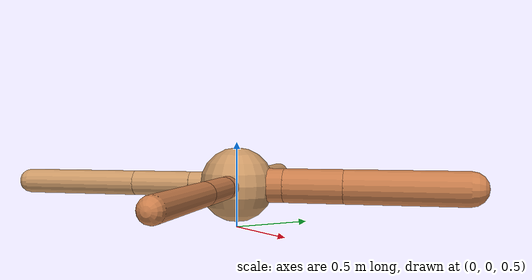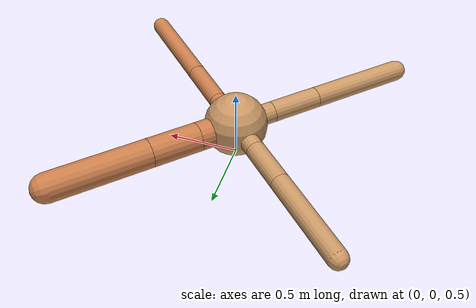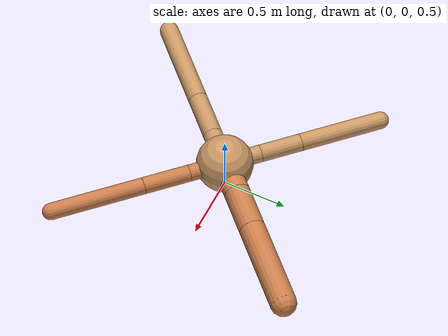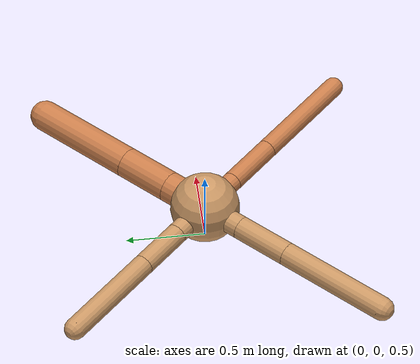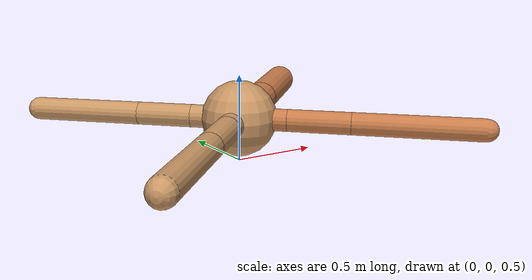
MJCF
<?xml version="1.0" ?>
<mujoco model="ant">

	<compiler angle="degree" coordinate="local" inertiafromgeom="true"/>

	<option integrator="RK4" timestep="0.01"/>

	<custom>

		<numeric data="0.0 0.0 0.55 1.0 0.0 0.0 0.0 0.0 1.0 0.0 -1.0 0.0 -1.0 0.0 1.0" name="init_qpos"/>

	</custom>

	<default>

		<joint armature="1" damping="1" limited="true"/>

		<geom conaffinity="0" condim="3" density="5.0" friction="1.5 0.1 0.1" margin="0.01" rgba="0.8 0.6 0.4 1"/>

	</default>

	<worldbody>

		<body name="torso" pos="0 0 0.75">

			<geom name="torso_geom" pos="0 0 0" size="0.21892883373669075" type="sphere"/>

			<!--joint armature="0" damping="0" limited="false" margin="0.01" name="root" pos="0 0 0" type="free"/-->

			<body name="front_left_leg" pos="0 0 0">

				<geom fromto="0 0 0 0.2 0.2 0" name="aux_1_geom" size="0.09932683225208822" type="capsule" rgba=".8 .5 .3 1"/>

				<body name="aux_1" pos="0.2 0.2 0">

					<joint axis="0 0 1" name="hip_1" pos="0.0 0.0 0.0" range="-40 40" type="hinge"/>

					<geom fromto="0 0 0 0.2428603784894397 0.2428603784894397 0" name="left_leg_geom" size="0.09932683225208822" type="capsule" rgba=".8 .5 .3 1"/>

					<body pos="0.2428603784894397 0.2428603784894397 0" name="front_left_foot">

						<joint axis="-1 1 0" name="ankle_1" pos="0.0 0.0 0.0" range="30 100" type="hinge"/>

						<geom fromto="0 0 0 0.4857207569788794 0.4857207569788794 0" name="left_ankle_geom" size="0.09932683225208822" type="capsule" rgba=".8 .5 .3 1"/>

					</body>

				</body>

			</body>

			<body name="front_right_leg" pos="0 0 0">

				<geom fromto="0 0 0 -0.2 0.2 0" name="aux_2_geom" size="0.06688182354376988" type="capsule"/>

				<body name="aux_2" pos="-0.2 0.2 0">

					<joint axis="0 0 1" name="hip_2" pos="0.0 0.0 0.0" range="-40 40" type="hinge"/>

					<geom fromto="0 0 0 -0.2286572329378348 0.2286572329378348 0" name="right_leg_geom" size="0.06688182354376988" type="capsule"/>

					<body pos="-0.2286572329378348 0.2286572329378348 0" name="front_right_foot">

						<joint axis="1 1 0" name="ankle_2" pos="0.0 0.0 0.0" range="-100 -30" type="hinge"/>

						<geom fromto="0 0 0 -0.4573144658756696 0.4573144658756696 0" name="right_ankle_geom" size="0.06688182354376988" type="capsule"/>

					</body>

				</body>

			</body>

			<body name="left_back_leg" pos="0 0 0">

				<geom fromto="0 0 0 -0.2 -0.2 0" name="aux_3_geom" size="0.07380686693230254" type="capsule"/>

				<body name="aux_3" pos="-0.2 -0.2 0">

					<joint axis="0 0 1" name="hip_3" pos="0.0 0.0 0.0" range="-40 40" type="hinge"/>

					<geom fromto="0 0 0 -0.25077175423784565 -0.25077175423784565 0" name="back_leg_geom" size="0.07380686693230254" type="capsule"/>

					<body pos="-0.25077175423784565 -0.25077175423784565 0" name="left_back_foot">

						<joint axis="-1 1 0" name="ankle_3" pos="0.0 0.0 0.0" range="-100 -30" type="hinge"/>

						<geom fromto="0 0 0 -0.5015435084756913 -0.5015435084756913 0" name="third_ankle_geom" size="0.07380686693230254" type="capsule"/>

					</body>

				</body>

			</body>

			<body name="right_back_leg" pos="0 0 0">

				<geom fromto="0 0 0 0.2 -0.2 0" name="aux_4_geom" size="0.06404348491618245" type="capsule" rgba=".8 .5 .3 1"/>

				<body name="aux_4" pos="0.2 -0.2 0">

					<joint axis="0 0 1" name="hip_4" pos="0.0 0.0 0.0" range="-40 40" type="hinge"/>

					<geom fromto="0 0 0 0.2555860971875977 -0.2555860971875977 0" name="rightback_leg_geom" size="0.06404348491618245" type="capsule" rgba=".8 .5 .3 1"/>

					<body pos="0.2555860971875977 -0.2555860971875977 0" name="right_back_foot">

						<joint axis="1 1 0" name="ankle_4" pos="0.0 0.0 0.0" range="30 100" type="hinge"/>

						<geom fromto="0 0 0 0.5111721943751955 -0.5111721943751955 0" name="fourth_ankle_geom" size="0.06404348491618245" type="capsule" rgba=".8 .5 .3 1"/>

					</body>

				</body>

			</body>

		</body>

	</worldbody>

	<actuator>

		<motor ctrllimited="true" ctrlrange="-1.0 1.0" joint="hip_4" gear="150"/>

		<motor ctrllimited="true" ctrlrange="-1.0 1.0" joint="ankle_4" gear="150"/>

		<motor ctrllimited="true" ctrlrange="-1.0 1.0" joint="hip_1" gear="150"/>

		<motor ctrllimited="true" ctrlrange="-1.0 1.0" joint="ankle_1" gear="150"/>

		<motor ctrllimited="true" ctrlrange="-1.0 1.0" joint="hip_2" gear="150"/>

		<motor ctrllimited="true" ctrlrange="-1.0 1.0" joint="ankle_2" gear="150"/>

		<motor ctrllimited="true" ctrlrange="-1.0 1.0" joint="hip_3" gear="150"/>

		<motor ctrllimited="true" ctrlrange="-1.0 1.0" joint="ankle_3" gear="150"/>

	</actuator>

</mujoco>
